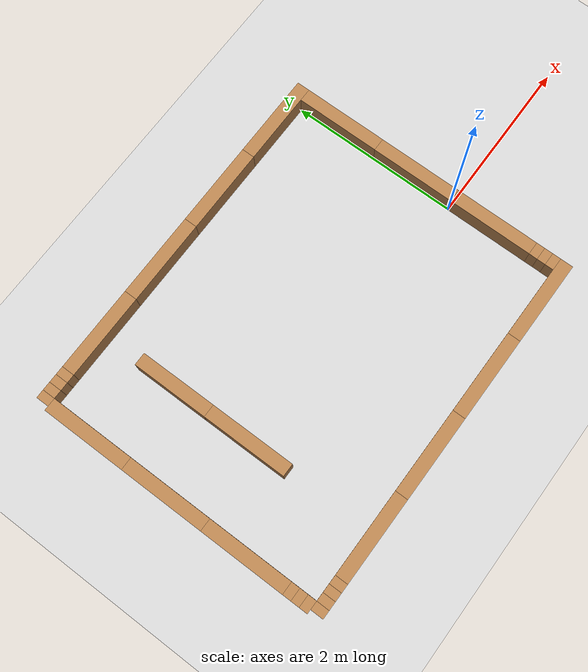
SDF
<sdf version='1.7'>
  <world name='default'>
    <!-- A global light source -->
    <include>
      <uri>model://sun</uri>
    </include>

    <!-- A ground plane -->
    <include>
      <uri>model://ground_plane</uri>
    </include>

    <physics type='ode'>
      <real_time_update_rate>1000</real_time_update_rate>
      <max_step_size>0.001</max_step_size>
      <real_time_factor>1</real_time_factor>
      <ode>
        <solver>
          <type>quick</type>
          <iters>150</iters>
          <precon_iters>0</precon_iters>
          <sor>1.4</sor>
          <use_dynamic_moi_rescaling>1</use_dynamic_moi_rescaling>
        </solver>
        <constraints>
          <cfm>1e-05</cfm>
          <erp>0.2</erp>
          <contact_max_correcting_vel>2000</contact_max_correcting_vel>
          <contact_surface_layer>0.01</contact_surface_layer>
        </constraints>
      </ode>
    </physics>

    <!-- North wall -->

    <include>
      <uri>model://wall_1_0</uri>
      <name>wall_n_0</name>
      <pose>0.075 0.5 0 0 0 0</pose>
    </include>

    <include>
      <uri>model://wall_1_0</uri>
      <name>wall_n_1</name>
      <pose>0.075 1.5 0 0 0 0</pose>
    </include>

    <include>
      <uri>model://wall_1_0</uri>
      <name>wall_n_3</name>
      <pose>0.075 -0.5 0 0 0 0</pose>
    </include>

    <include>
      <uri>model://wall_0_1</uri>
      <name>wall_n_4</name>
      <pose>0.075 -1.05 0 0 0 0</pose>
    </include>

    <include>
      <uri>model://wall_0_1</uri>
      <name>wall_n_5</name>
      <pose>0.075 -1.15 0 0 0 0</pose>
    </include>

    <include>
      <uri>model://wall_0_1</uri>
      <name>wall_n_6</name>
      <pose>0.075 -1.25 0 0 0 0</pose>
    </include>

    <!-- West wall -->

    <include>
      <uri>model://wall_1_0</uri>
      <name>wall_w_0</name>
      <pose>-0.35 2.075 0 0 0 1.5708</pose>
    </include>

    <include>
      <uri>model://wall_1_0</uri>
      <name>wall_w_1</name>
      <pose>-1.35 2.075 0 0 0 1.5708</pose>
    </include>

    <include>
      <uri>model://wall_1_0</uri>
      <name>wall_w_2</name>
      <pose>-2.35 2.075 0 0 0 1.5708</pose>
    </include>

    <include>
      <uri>model://wall_1_0</uri>
      <name>wall_w_3</name>
      <pose>-3.35 2.075 0 0 0 1.5708</pose>
    </include>

    <include>
      <uri>model://wall_0_1</uri>
      <name>wall_w_4</name>
      <pose>-3.90 2.075 0 0 0 1.5708</pose>
    </include>

    <include>
      <uri>model://wall_0_1</uri>
      <name>wall_w_5</name>
      <pose>-4.00 2.075 0 0 0 1.5708</pose>
    </include>

    <include>
      <uri>model://wall_0_1</uri>
      <name>wall_w_6</name>
      <pose>-4.10 2.075 0 0 0 1.5708</pose>
    </include>

    <include>
      <uri>model://wall_0_1</uri>
      <name>wall_w_7</name>
      <pose>-4.20 2.075 0 0 0 1.5708</pose>
    </include>

    <!-- South wall -->

    <include>
      <uri>model://wall_1_0</uri>
      <name>wall_s_0</name>
      <pose>-4.225 0.5 0 0 0 0</pose>
    </include>

    <include>
      <uri>model://wall_1_0</uri>
      <name>wall_s_1</name>
      <pose>-4.225 1.5 0 0 0 0</pose>
    </include>

    <include>
      <uri>model://wall_1_0</uri>
      <name>wall_s_3</name>
      <pose>-4.225 -0.5 0 0 0 0</pose>
    </include>

    <include>
      <uri>model://wall_0_1</uri>
      <name>wall_s_4</name>
      <pose>-4.225 -1.05 0 0 0 0</pose>
    </include>

    <include>
      <uri>model://wall_0_1</uri>
      <name>wall_s_5</name>
      <pose>-4.225 -1.15 0 0 0 0</pose>
    </include>

    <include>
      <uri>model://wall_0_1</uri>
      <name>wall_s_6</name>
      <pose>-4.225 -1.25 0 0 0 0</pose>
    </include>

    <!-- East wall -->

    <include>
      <uri>model://wall_1_0</uri>
      <name>wall_e_0</name>
      <pose>-0.35 -1.375 0 0 0 1.5708</pose>
    </include>

    <include>
      <uri>model://wall_1_0</uri>
      <name>wall_e_1</name>
      <pose>-1.35 -1.375 0 0 0 1.5708</pose>
    </include>

    <include>
      <uri>model://wall_1_0</uri>
      <name>wall_e_2</name>
      <pose>-2.35 -1.375 0 0 0 1.5708</pose>
    </include>

    <include>
      <uri>model://wall_1_0</uri>
      <name>wall_e_3</name>
      <pose>-3.35 -1.375 0 0 0 1.5708</pose>
    </include>

    <include>
      <uri>model://wall_0_1</uri>
      <name>wall_e_4</name>
      <pose>-3.90 -1.375 0 0 0 1.5708</pose>
    </include>

    <include>
      <uri>model://wall_0_1</uri>
      <name>wall_e_5</name>
      <pose>-4.00 -1.375 0 0 0 1.5708</pose>
    </include>

    <include>
      <uri>model://wall_0_1</uri>
      <name>wall_e_6</name>
      <pose>-4.10 -1.375 0 0 0 1.5708</pose>
    </include>

    <include>
      <uri>model://wall_0_1</uri>
      <name>wall_e_7</name>
      <pose>-4.20 -1.375 0 0 0 1.5708</pose>
    </include>

    <!-- Obstacle -->

    <include>
      <uri>model://wall_1_0</uri>
      <name>obstacle_0</name>
      <pose>-3.32 1.07 0 0 0 0</pose>
    </include>

    <include>
      <uri>model://wall_1_0</uri>
      <name>obstacle_1</name>
      <pose>-3.32 0.17 0 0 0 0</pose>
    </include>

    <scene>
      <ambient>0.4 0.4 0.4 1</ambient>
      <background>0.7 0.7 0.7 1</background>
      <shadows>true</shadows>
    </scene>

    <gui fullscreen='0'>
      <camera name='user_camera'>
        <pose>0.0 0.0 17.0 0 1.5708 0</pose>
        <view_controller>orbit</view_controller>
      </camera>
    </gui>
  </world>
</sdf>

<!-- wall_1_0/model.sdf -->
<sdf version='1.6'>
  <model name='wall_1_0'>
    <link name='Wall_0'>
      <collision name='Wall_0_Collision'>
        <geometry>
          <box>
            <size>0.15 1 0.5</size>
          </box>
        </geometry>
      </collision>
      <visual name='Wall_0_Visual'>
        <geometry>
          <box>
            <size>0.15 1 0.5</size>
          </box>
        </geometry>
        <material>
          <script>
            <uri>file://media/materials/scripts/gazebo.material</uri>
            <name>Gazebo/Wood</name>
          </script>
          <ambient>1 1 1 1</ambient>
        </material>
      </visual>
    </link>
    <static>1</static>
  </model>
</sdf>

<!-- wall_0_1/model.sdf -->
<sdf version='1.6'>
  <model name='wall_0_1'>
    <link name='Wall_0'>
      <collision name='Wall_0_Collision'>
        <geometry>
          <box>
            <size>0.15 0.1 0.5</size>
          </box>
        </geometry>
      </collision>
      <visual name='Wall_0_Visual'>
        <geometry>
          <box>
            <size>0.15 0.1 0.5</size>
          </box>
        </geometry>
        <material>
          <script>
            <uri>file://media/materials/scripts/gazebo.material</uri>
            <name>Gazebo/Wood</name>
          </script>
          <ambient>1 1 1 1</ambient>
        </material>
      </visual>
    </link>
    <static>1</static>
  </model>
</sdf>
